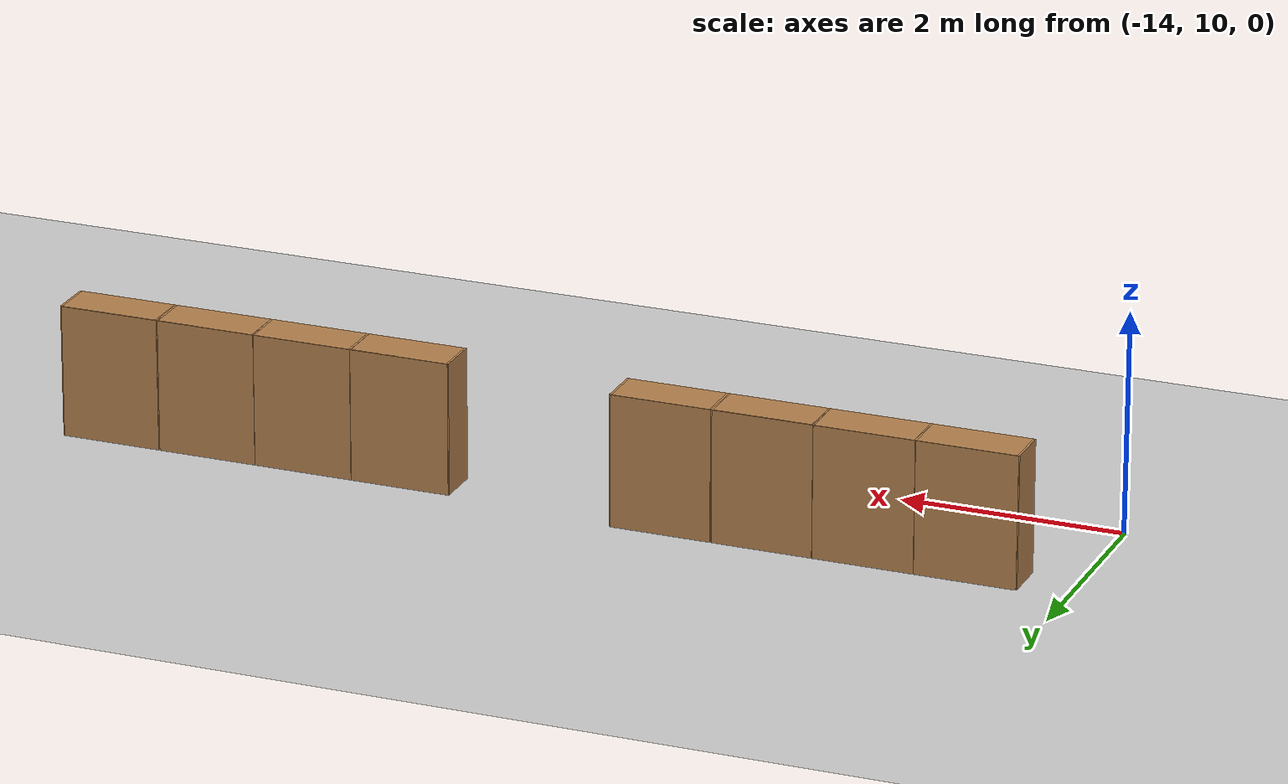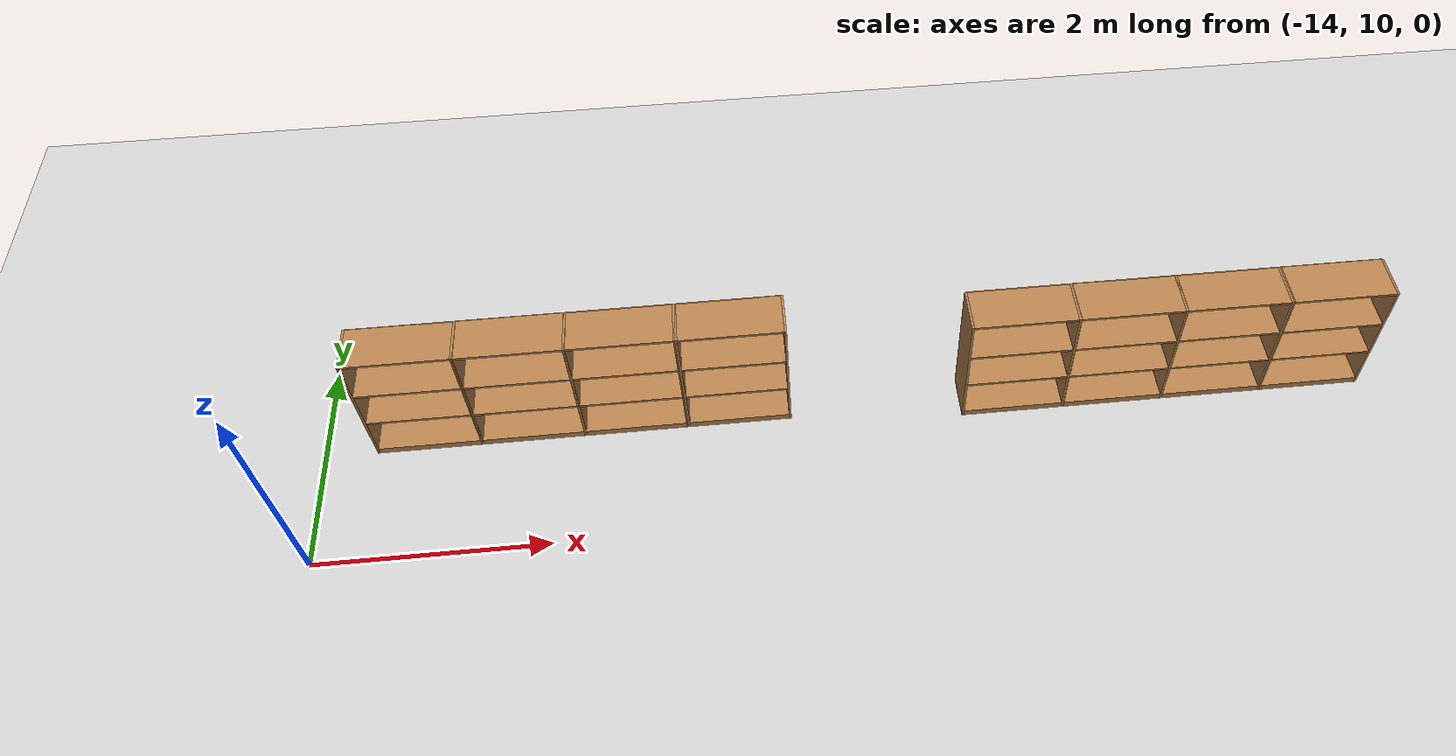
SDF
<sdf version="1.6">
 <world name="default">
  <model name="ground_plane">
   <static>1</static>
   <link name="link">
    <collision name="collision">
     <geometry><plane><normal>0 0 1</normal><size>100 100</size></plane></geometry>
     <surface><friction><ode><mu>100</mu><mu2>50</mu2></ode></friction></surface>
    </collision>
    <visual name="visual">
     <cast_shadows>0</cast_shadows>
     <geometry><plane><normal>0 0 1</normal><size>100 100</size></plane></geometry>
     <material>
      <script><uri>file://media/materials/scripts/gazebo.material</uri><name>Gazebo/Grey</name></script>
     </material>
    </visual>
   </link>
  </model>
  <model name="Bookself-4_clone_3">
   <model name="Bookself-3">
    <model name="bookshelf_0">
     <static>1</static>
     <link name="link">
      <inertial><mass>1</mass></inertial>
      <collision name="back">
       <pose>0 0.005 0.6 0 -0 0</pose>
       <geometry><box><size>0.9 0.01 1.2</size></box></geometry>
      </collision>
      <visual name="visual1">
       <pose>0 0.005 0.6 0 -0 0</pose>
       <geometry><box><size>0.9 0.01 1.2</size></box></geometry>
       <material>
        <script><uri>file://media/materials/scripts/gazebo.material</uri><name>Gazebo/Wood</name></script>
       </material>
      </visual>
      <collision name="left_side">
       <pose>0.45 -0.195 0.6 0 -0 0</pose>
       <geometry><box><size>0.02 0.4 1.2</size></box></geometry>
      </collision>
      <visual name="visual2">
       <pose>0.45 -0.195 0.6 0 -0 0</pose>
       <geometry><box><size>0.02 0.4 1.2</size></box></geometry>
       <material>
        <script><uri>file://media/materials/scripts/gazebo.material</uri><name>Gazebo/Wood</name></script>
       </material>
      </visual>
      <collision name="right_side">
       <pose>-0.45 -0.195 0.6 0 -0 0</pose>
       <geometry><box><size>0.02 0.4 1.2</size></box></geometry>
      </collision>
      <visual name="visual3">
       <pose>-0.45 -0.195 0.6 0 -0 0</pose>
       <geometry><box><size>0.02 0.4 1.2</size></box></geometry>
       <material>
        <script><uri>file://media/materials/scripts/gazebo.material</uri><name>Gazebo/Wood</name></script>
       </material>
      </visual>
      <collision name="bottom">
       <pose>0 -0.195 0.03 0 -0 0</pose>
       <geometry><box><size>0.88 0.4 0.06</size></box></geometry>
      </collision>
      <visual name="visual4">
       <pose>0 -0.195 0.03 0 -0 0</pose>
       <geometry><box><size>0.88 0.4 0.06</size></box></geometry>
       <material>
        <script><uri>file://media/materials/scripts/gazebo.material</uri><name>Gazebo/Wood</name></script>
       </material>
      </visual>
      <collision name="top">
       <pose>0 -0.195 1.19 0 -0 0</pose>
       <geometry><box><size>0.88 0.4 0.02</size></box></geometry>
      </collision>
      <visual name="visual5">
       <pose>0 -0.195 1.19 0 -0 0</pose>
       <geometry><box><size>0.88 0.4 0.02</size></box></geometry>
       <material>
        <script><uri>file://media/materials/scripts/gazebo.material</uri><name>Gazebo/Wood</name></script>
       </material>
      </visual>
      <collision name="low_shelf">
       <pose>0 -0.195 0.43 0 -0 0</pose>
       <geometry><box><size>0.88 0.4 0.02</size></box></geometry>
      </collision>
      <visual name="visual6">
       <pose>0 -0.195 0.43 0 -0 0</pose>
       <geometry><box><size>0.88 0.4 0.02</size></box></geometry>
       <material>
        <script><uri>file://media/materials/scripts/gazebo.material</uri><name>Gazebo/Wood</name></script>
       </material>
      </visual>
      <collision name="high_shelf">
       <pose>0 -0.195 0.8 0 -0 0</pose>
       <geometry><box><size>0.88 0.4 0.02</size></box></geometry>
      </collision>
      <visual name="visual7">
       <pose>0 -0.195 0.8 0 -0 0</pose>
       <geometry><box><size>0.88 0.4 0.02</size></box></geometry>
       <material>
        <script><uri>file://media/materials/scripts/gazebo.material</uri><name>Gazebo/Wood</name></script>
       </material>
      </visual>
     </link>
     <pose>-0.903039 0 0 0 -0 0</pose>
    </model>
    <model name="bookshelf_1">
     <static>1</static>
     <link name="link">
      <inertial><mass>1</mass></inertial>
      <collision name="back">
       <pose>0 0.005 0.6 0 -0 0</pose>
       <geometry><box><size>0.9 0.01 1.2</size></box></geometry>
      </collision>
      <visual name="visual1">
       <pose>0 0.005 0.6 0 -0 0</pose>
       <geometry><box><size>0.9 0.01 1.2</size></box></geometry>
       <material>
        <script><uri>file://media/materials/scripts/gazebo.material</uri><name>Gazebo/Wood</name></script>
       </material>
      </visual>
      <collision name="left_side">
       <pose>0.45 -0.195 0.6 0 -0 0</pose>
       <geometry><box><size>0.02 0.4 1.2</size></box></geometry>
      </collision>
      <visual name="visual2">
       <pose>0.45 -0.195 0.6 0 -0 0</pose>
       <geometry><box><size>0.02 0.4 1.2</size></box></geometry>
       <material>
        <script><uri>file://media/materials/scripts/gazebo.material</uri><name>Gazebo/Wood</name></script>
       </material>
      </visual>
      <collision name="right_side">
       <pose>-0.45 -0.195 0.6 0 -0 0</pose>
       <geometry><box><size>0.02 0.4 1.2</size></box></geometry>
      </collision>
      <visual name="visual3">
       <pose>-0.45 -0.195 0.6 0 -0 0</pose>
       <geometry><box><size>0.02 0.4 1.2</size></box></geometry>
       <material>
        <script><uri>file://media/materials/scripts/gazebo.material</uri><name>Gazebo/Wood</name></script>
       </material>
      </visual>
      <collision name="bottom">
       <pose>0 -0.195 0.03 0 -0 0</pose>
       <geometry><box><size>0.88 0.4 0.06</size></box></geometry>
      </collision>
      <visual name="visual4">
       <pose>0 -0.195 0.03 0 -0 0</pose>
       <geometry><box><size>0.88 0.4 0.06</size></box></geometry>
       <material>
        <script><uri>file://media/materials/scripts/gazebo.material</uri><name>Gazebo/Wood</name></script>
       </material>
      </visual>
      <collision name="top">
       <pose>0 -0.195 1.19 0 -0 0</pose>
       <geometry><box><size>0.88 0.4 0.02</size></box></geometry>
      </collision>
      <visual name="visual5">
       <pose>0 -0.195 1.19 0 -0 0</pose>
       <geometry><box><size>0.88 0.4 0.02</size></box></geometry>
       <material>
        <script><uri>file://media/materials/scripts/gazebo.material</uri><name>Gazebo/Wood</name></script>
       </material>
      </visual>
      <collision name="low_shelf">
       <pose>0 -0.195 0.43 0 -0 0</pose>
       <geometry><box><size>0.88 0.4 0.02</size></box></geometry>
      </collision>
      <visual name="visual6">
       <pose>0 -0.195 0.43 0 -0 0</pose>
       <geometry><box><size>0.88 0.4 0.02</size></box></geometry>
       <material>
        <script><uri>file://media/materials/scripts/gazebo.material</uri><name>Gazebo/Wood</name></script>
       </material>
      </visual>
      <collision name="high_shelf">
       <pose>0 -0.195 0.8 0 -0 0</pose>
       <geometry><box><size>0.88 0.4 0.02</size></box></geometry>
      </collision>
      <visual name="visual7">
       <pose>0 -0.195 0.8 0 -0 0</pose>
       <geometry><box><size>0.88 0.4 0.02</size></box></geometry>
       <material>
        <script><uri>file://media/materials/scripts/gazebo.material</uri><name>Gazebo/Wood</name></script>
       </material>
      </visual>
     </link>
     <pose>0.000535 0 0 0 -0 0</pose>
    </model>
    <model name="bookshelf_1_clone">
     <static>1</static>
     <link name="link">
      <inertial><mass>1</mass></inertial>
      <collision name="back">
       <pose>0 0.005 0.6 0 -0 0</pose>
       <geometry><box><size>0.9 0.01 1.2</size></box></geometry>
      </collision>
      <visual name="visual1">
       <pose>0 0.005 0.6 0 -0 0</pose>
       <geometry><box><size>0.9 0.01 1.2</size></box></geometry>
       <material>
        <script><uri>file://media/materials/scripts/gazebo.material</uri><name>Gazebo/Wood</name></script>
       </material>
      </visual>
      <collision name="left_side">
       <pose>0.45 -0.195 0.6 0 -0 0</pose>
       <geometry><box><size>0.02 0.4 1.2</size></box></geometry>
      </collision>
      <visual name="visual2">
       <pose>0.45 -0.195 0.6 0 -0 0</pose>
       <geometry><box><size>0.02 0.4 1.2</size></box></geometry>
       <material>
        <script><uri>file://media/materials/scripts/gazebo.material</uri><name>Gazebo/Wood</name></script>
       </material>
      </visual>
      <collision name="right_side">
       <pose>-0.45 -0.195 0.6 0 -0 0</pose>
       <geometry><box><size>0.02 0.4 1.2</size></box></geometry>
      </collision>
      <visual name="visual3">
       <pose>-0.45 -0.195 0.6 0 -0 0</pose>
       <geometry><box><size>0.02 0.4 1.2</size></box></geometry>
       <material>
        <script><uri>file://media/materials/scripts/gazebo.material</uri><name>Gazebo/Wood</name></script>
       </material>
      </visual>
      <collision name="bottom">
       <pose>0 -0.195 0.03 0 -0 0</pose>
       <geometry><box><size>0.88 0.4 0.06</size></box></geometry>
      </collision>
      <visual name="visual4">
       <pose>0 -0.195 0.03 0 -0 0</pose>
       <geometry><box><size>0.88 0.4 0.06</size></box></geometry>
       <material>
        <script><uri>file://media/materials/scripts/gazebo.material</uri><name>Gazebo/Wood</name></script>
       </material>
      </visual>
      <collision name="top">
       <pose>0 -0.195 1.19 0 -0 0</pose>
       <geometry><box><size>0.88 0.4 0.02</size></box></geometry>
      </collision>
      <visual name="visual5">
       <pose>0 -0.195 1.19 0 -0 0</pose>
       <geometry><box><size>0.88 0.4 0.02</size></box></geometry>
       <material>
        <script><uri>file://media/materials/scripts/gazebo.material</uri><name>Gazebo/Wood</name></script>
       </material>
      </visual>
      <collision name="low_shelf">
       <pose>0 -0.195 0.43 0 -0 0</pose>
       <geometry><box><size>0.88 0.4 0.02</size></box></geometry>
      </collision>
      <visual name="visual6">
       <pose>0 -0.195 0.43 0 -0 0</pose>
       <geometry><box><size>0.88 0.4 0.02</size></box></geometry>
       <material>
        <script><uri>file://media/materials/scripts/gazebo.material</uri><name>Gazebo/Wood</name></script>
       </material>
      </visual>
      <collision name="high_shelf">
       <pose>0 -0.195 0.8 0 -0 0</pose>
       <geometry><box><size>0.88 0.4 0.02</size></box></geometry>
      </collision>
      <visual name="visual7">
       <pose>0 -0.195 0.8 0 -0 0</pose>
       <geometry><box><size>0.88 0.4 0.02</size></box></geometry>
       <material>
        <script><uri>file://media/materials/scripts/gazebo.material</uri><name>Gazebo/Wood</name></script>
       </material>
      </visual>
     </link>
     <pose>0.902502 0 0 0 -0 0</pose>
    </model>
    <static>1</static>
    <pose>-0.906894 3e-05 0 0 -0 0</pose>
   </model>
   <model name="bookshelf">
    <static>1</static>
    <link name="link">
     <inertial><mass>1</mass></inertial>
     <collision name="back">
      <pose>0 0.005 0.6 0 -0 0</pose>
      <geometry><box><size>0.9 0.01 1.2</size></box></geometry>
     </collision>
     <visual name="visual1">
      <pose>0 0.005 0.6 0 -0 0</pose>
      <geometry><box><size>0.9 0.01 1.2</size></box></geometry>
      <material>
       <script><uri>file://media/materials/scripts/gazebo.material</uri><name>Gazebo/Wood</name></script>
      </material>
     </visual>
     <collision name="left_side">
      <pose>0.45 -0.195 0.6 0 -0 0</pose>
      <geometry><box><size>0.02 0.4 1.2</size></box></geometry>
     </collision>
     <visual name="visual2">
      <pose>0.45 -0.195 0.6 0 -0 0</pose>
      <geometry><box><size>0.02 0.4 1.2</size></box></geometry>
      <material>
       <script><uri>file://media/materials/scripts/gazebo.material</uri><name>Gazebo/Wood</name></script>
      </material>
     </visual>
     <collision name="right_side">
      <pose>-0.45 -0.195 0.6 0 -0 0</pose>
      <geometry><box><size>0.02 0.4 1.2</size></box></geometry>
     </collision>
     <visual name="visual3">
      <pose>-0.45 -0.195 0.6 0 -0 0</pose>
      <geometry><box><size>0.02 0.4 1.2</size></box></geometry>
      <material>
       <script><uri>file://media/materials/scripts/gazebo.material</uri><name>Gazebo/Wood</name></script>
      </material>
     </visual>
     <collision name="bottom">
      <pose>0 -0.195 0.03 0 -0 0</pose>
      <geometry><box><size>0.88 0.4 0.06</size></box></geometry>
     </collision>
     <visual name="visual4">
      <pose>0 -0.195 0.03 0 -0 0</pose>
      <geometry><box><size>0.88 0.4 0.06</size></box></geometry>
      <material>
       <script><uri>file://media/materials/scripts/gazebo.material</uri><name>Gazebo/Wood</name></script>
      </material>
     </visual>
     <collision name="top">
      <pose>0 -0.195 1.19 0 -0 0</pose>
      <geometry><box><size>0.88 0.4 0.02</size></box></geometry>
     </collision>
     <visual name="visual5">
      <pose>0 -0.195 1.19 0 -0 0</pose>
      <geometry><box><size>0.88 0.4 0.02</size></box></geometry>
      <material>
       <script><uri>file://media/materials/scripts/gazebo.material</uri><name>Gazebo/Wood</name></script>
      </material>
     </visual>
     <collision name="low_shelf">
      <pose>0 -0.195 0.43 0 -0 0</pose>
      <geometry><box><size>0.88 0.4 0.02</size></box></geometry>
     </collision>
     <visual name="visual6">
      <pose>0 -0.195 0.43 0 -0 0</pose>
      <geometry><box><size>0.88 0.4 0.02</size></box></geometry>
      <material>
       <script><uri>file://media/materials/scripts/gazebo.material</uri><name>Gazebo/Wood</name></script>
      </material>
     </visual>
     <collision name="high_shelf">
      <pose>0 -0.195 0.8 0 -0 0</pose>
      <geometry><box><size>0.88 0.4 0.02</size></box></geometry>
     </collision>
     <visual name="visual7">
      <pose>0 -0.195 0.8 0 -0 0</pose>
      <geometry><box><size>0.88 0.4 0.02</size></box></geometry>
      <material>
       <script><uri>file://media/materials/scripts/gazebo.material</uri><name>Gazebo/Wood</name></script>
      </material>
     </visual>
    </link>
    <pose>0.906808 3e-05 0 0 -0 0</pose>
   </model>
   <static>0</static>
   <pose>-6.1324 11.3528 0 0 -0 0</pose>
  </model>
  <model name="Bookself-4_clone_6">
   <model name="Bookself-3">
    <model name="bookshelf_0">
     <static>1</static>
     <link name="link">
      <inertial><mass>1</mass></inertial>
      <collision name="back">
       <pose>0 0.005 0.6 0 -0 0</pose>
       <geometry><box><size>0.9 0.01 1.2</size></box></geometry>
      </collision>
      <visual name="visual1">
       <pose>0 0.005 0.6 0 -0 0</pose>
       <geometry><box><size>0.9 0.01 1.2</size></box></geometry>
       <material>
        <script><uri>file://media/materials/scripts/gazebo.material</uri><name>Gazebo/Wood</name></script>
       </material>
      </visual>
      <collision name="left_side">
       <pose>0.45 -0.195 0.6 0 -0 0</pose>
       <geometry><box><size>0.02 0.4 1.2</size></box></geometry>
      </collision>
      <visual name="visual2">
       <pose>0.45 -0.195 0.6 0 -0 0</pose>
       <geometry><box><size>0.02 0.4 1.2</size></box></geometry>
       <material>
        <script><uri>file://media/materials/scripts/gazebo.material</uri><name>Gazebo/Wood</name></script>
       </material>
      </visual>
      <collision name="right_side">
       <pose>-0.45 -0.195 0.6 0 -0 0</pose>
       <geometry><box><size>0.02 0.4 1.2</size></box></geometry>
      </collision>
      <visual name="visual3">
       <pose>-0.45 -0.195 0.6 0 -0 0</pose>
       <geometry><box><size>0.02 0.4 1.2</size></box></geometry>
       <material>
        <script><uri>file://media/materials/scripts/gazebo.material</uri><name>Gazebo/Wood</name></script>
       </material>
      </visual>
      <collision name="bottom">
       <pose>0 -0.195 0.03 0 -0 0</pose>
       <geometry><box><size>0.88 0.4 0.06</size></box></geometry>
      </collision>
      <visual name="visual4">
       <pose>0 -0.195 0.03 0 -0 0</pose>
       <geometry><box><size>0.88 0.4 0.06</size></box></geometry>
       <material>
        <script><uri>file://media/materials/scripts/gazebo.material</uri><name>Gazebo/Wood</name></script>
       </material>
      </visual>
      <collision name="top">
       <pose>0 -0.195 1.19 0 -0 0</pose>
       <geometry><box><size>0.88 0.4 0.02</size></box></geometry>
      </collision>
      <visual name="visual5">
       <pose>0 -0.195 1.19 0 -0 0</pose>
       <geometry><box><size>0.88 0.4 0.02</size></box></geometry>
       <material>
        <script><uri>file://media/materials/scripts/gazebo.material</uri><name>Gazebo/Wood</name></script>
       </material>
      </visual>
      <collision name="low_shelf">
       <pose>0 -0.195 0.43 0 -0 0</pose>
       <geometry><box><size>0.88 0.4 0.02</size></box></geometry>
      </collision>
      <visual name="visual6">
       <pose>0 -0.195 0.43 0 -0 0</pose>
       <geometry><box><size>0.88 0.4 0.02</size></box></geometry>
       <material>
        <script><uri>file://media/materials/scripts/gazebo.material</uri><name>Gazebo/Wood</name></script>
       </material>
      </visual>
      <collision name="high_shelf">
       <pose>0 -0.195 0.8 0 -0 0</pose>
       <geometry><box><size>0.88 0.4 0.02</size></box></geometry>
      </collision>
      <visual name="visual7">
       <pose>0 -0.195 0.8 0 -0 0</pose>
       <geometry><box><size>0.88 0.4 0.02</size></box></geometry>
       <material>
        <script><uri>file://media/materials/scripts/gazebo.material</uri><name>Gazebo/Wood</name></script>
       </material>
      </visual>
     </link>
     <pose>-0.903039 0 0 0 -0 0</pose>
    </model>
    <model name="bookshelf_1">
     <static>1</static>
     <link name="link">
      <inertial><mass>1</mass></inertial>
      <collision name="back">
       <pose>0 0.005 0.6 0 -0 0</pose>
       <geometry><box><size>0.9 0.01 1.2</size></box></geometry>
      </collision>
      <visual name="visual1">
       <pose>0 0.005 0.6 0 -0 0</pose>
       <geometry><box><size>0.9 0.01 1.2</size></box></geometry>
       <material>
        <script><uri>file://media/materials/scripts/gazebo.material</uri><name>Gazebo/Wood</name></script>
       </material>
      </visual>
      <collision name="left_side">
       <pose>0.45 -0.195 0.6 0 -0 0</pose>
       <geometry><box><size>0.02 0.4 1.2</size></box></geometry>
      </collision>
      <visual name="visual2">
       <pose>0.45 -0.195 0.6 0 -0 0</pose>
       <geometry><box><size>0.02 0.4 1.2</size></box></geometry>
       <material>
        <script><uri>file://media/materials/scripts/gazebo.material</uri><name>Gazebo/Wood</name></script>
       </material>
      </visual>
      <collision name="right_side">
       <pose>-0.45 -0.195 0.6 0 -0 0</pose>
       <geometry><box><size>0.02 0.4 1.2</size></box></geometry>
      </collision>
      <visual name="visual3">
       <pose>-0.45 -0.195 0.6 0 -0 0</pose>
       <geometry><box><size>0.02 0.4 1.2</size></box></geometry>
       <material>
        <script><uri>file://media/materials/scripts/gazebo.material</uri><name>Gazebo/Wood</name></script>
       </material>
      </visual>
      <collision name="bottom">
       <pose>0 -0.195 0.03 0 -0 0</pose>
       <geometry><box><size>0.88 0.4 0.06</size></box></geometry>
      </collision>
      <visual name="visual4">
       <pose>0 -0.195 0.03 0 -0 0</pose>
       <geometry><box><size>0.88 0.4 0.06</size></box></geometry>
       <material>
        <script><uri>file://media/materials/scripts/gazebo.material</uri><name>Gazebo/Wood</name></script>
       </material>
      </visual>
      <collision name="top">
       <pose>0 -0.195 1.19 0 -0 0</pose>
       <geometry><box><size>0.88 0.4 0.02</size></box></geometry>
      </collision>
      <visual name="visual5">
       <pose>0 -0.195 1.19 0 -0 0</pose>
       <geometry><box><size>0.88 0.4 0.02</size></box></geometry>
       <material>
        <script><uri>file://media/materials/scripts/gazebo.material</uri><name>Gazebo/Wood</name></script>
       </material>
      </visual>
      <collision name="low_shelf">
       <pose>0 -0.195 0.43 0 -0 0</pose>
       <geometry><box><size>0.88 0.4 0.02</size></box></geometry>
      </collision>
      <visual name="visual6">
       <pose>0 -0.195 0.43 0 -0 0</pose>
       <geometry><box><size>0.88 0.4 0.02</size></box></geometry>
       <material>
        <script><uri>file://media/materials/scripts/gazebo.material</uri><name>Gazebo/Wood</name></script>
       </material>
      </visual>
      <collision name="high_shelf">
       <pose>0 -0.195 0.8 0 -0 0</pose>
       <geometry><box><size>0.88 0.4 0.02</size></box></geometry>
      </collision>
      <visual name="visual7">
       <pose>0 -0.195 0.8 0 -0 0</pose>
       <geometry><box><size>0.88 0.4 0.02</size></box></geometry>
       <material>
        <script><uri>file://media/materials/scripts/gazebo.material</uri><name>Gazebo/Wood</name></script>
       </material>
      </visual>
     </link>
     <pose>0.000535 0 0 0 -0 0</pose>
    </model>
    <model name="bookshelf_1_clone">
     <static>1</static>
     <link name="link">
      <inertial><mass>1</mass></inertial>
      <collision name="back">
       <pose>0 0.005 0.6 0 -0 0</pose>
       <geometry><box><size>0.9 0.01 1.2</size></box></geometry>
      </collision>
      <visual name="visual1">
       <pose>0 0.005 0.6 0 -0 0</pose>
       <geometry><box><size>0.9 0.01 1.2</size></box></geometry>
       <material>
        <script><uri>file://media/materials/scripts/gazebo.material</uri><name>Gazebo/Wood</name></script>
       </material>
      </visual>
      <collision name="left_side">
       <pose>0.45 -0.195 0.6 0 -0 0</pose>
       <geometry><box><size>0.02 0.4 1.2</size></box></geometry>
      </collision>
      <visual name="visual2">
       <pose>0.45 -0.195 0.6 0 -0 0</pose>
       <geometry><box><size>0.02 0.4 1.2</size></box></geometry>
       <material>
        <script><uri>file://media/materials/scripts/gazebo.material</uri><name>Gazebo/Wood</name></script>
       </material>
      </visual>
      <collision name="right_side">
       <pose>-0.45 -0.195 0.6 0 -0 0</pose>
       <geometry><box><size>0.02 0.4 1.2</size></box></geometry>
      </collision>
      <visual name="visual3">
       <pose>-0.45 -0.195 0.6 0 -0 0</pose>
       <geometry><box><size>0.02 0.4 1.2</size></box></geometry>
       <material>
        <script><uri>file://media/materials/scripts/gazebo.material</uri><name>Gazebo/Wood</name></script>
       </material>
      </visual>
      <collision name="bottom">
       <pose>0 -0.195 0.03 0 -0 0</pose>
       <geometry><box><size>0.88 0.4 0.06</size></box></geometry>
      </collision>
      <visual name="visual4">
       <pose>0 -0.195 0.03 0 -0 0</pose>
       <geometry><box><size>0.88 0.4 0.06</size></box></geometry>
       <material>
        <script><uri>file://media/materials/scripts/gazebo.material</uri><name>Gazebo/Wood</name></script>
       </material>
      </visual>
      <collision name="top">
       <pose>0 -0.195 1.19 0 -0 0</pose>
       <geometry><box><size>0.88 0.4 0.02</size></box></geometry>
      </collision>
      <visual name="visual5">
       <pose>0 -0.195 1.19 0 -0 0</pose>
       <geometry><box><size>0.88 0.4 0.02</size></box></geometry>
       <material>
        <script><uri>file://media/materials/scripts/gazebo.material</uri><name>Gazebo/Wood</name></script>
       </material>
      </visual>
      <collision name="low_shelf">
       <pose>0 -0.195 0.43 0 -0 0</pose>
       <geometry><box><size>0.88 0.4 0.02</size></box></geometry>
      </collision>
      <visual name="visual6">
       <pose>0 -0.195 0.43 0 -0 0</pose>
       <geometry><box><size>0.88 0.4 0.02</size></box></geometry>
       <material>
        <script><uri>file://media/materials/scripts/gazebo.material</uri><name>Gazebo/Wood</name></script>
       </material>
      </visual>
      <collision name="high_shelf">
       <pose>0 -0.195 0.8 0 -0 0</pose>
       <geometry><box><size>0.88 0.4 0.02</size></box></geometry>
      </collision>
      <visual name="visual7">
       <pose>0 -0.195 0.8 0 -0 0</pose>
       <geometry><box><size>0.88 0.4 0.02</size></box></geometry>
       <material>
        <script><uri>file://media/materials/scripts/gazebo.material</uri><name>Gazebo/Wood</name></script>
       </material>
      </visual>
     </link>
     <pose>0.902502 0 0 0 -0 0</pose>
    </model>
    <static>1</static>
    <pose>-0.906894 3e-05 0 0 -0 0</pose>
   </model>
   <model name="bookshelf">
    <static>1</static>
    <link name="link">
     <inertial><mass>1</mass></inertial>
     <collision name="back">
      <pose>0 0.005 0.6 0 -0 0</pose>
      <geometry><box><size>0.9 0.01 1.2</size></box></geometry>
     </collision>
     <visual name="visual1">
      <pose>0 0.005 0.6 0 -0 0</pose>
      <geometry><box><size>0.9 0.01 1.2</size></box></geometry>
      <material>
       <script><uri>file://media/materials/scripts/gazebo.material</uri><name>Gazebo/Wood</name></script>
      </material>
     </visual>
     <collision name="left_side">
      <pose>0.45 -0.195 0.6 0 -0 0</pose>
      <geometry><box><size>0.02 0.4 1.2</size></box></geometry>
     </collision>
     <visual name="visual2">
      <pose>0.45 -0.195 0.6 0 -0 0</pose>
      <geometry><box><size>0.02 0.4 1.2</size></box></geometry>
      <material>
       <script><uri>file://media/materials/scripts/gazebo.material</uri><name>Gazebo/Wood</name></script>
      </material>
     </visual>
     <collision name="right_side">
      <pose>-0.45 -0.195 0.6 0 -0 0</pose>
      <geometry><box><size>0.02 0.4 1.2</size></box></geometry>
     </collision>
     <visual name="visual3">
      <pose>-0.45 -0.195 0.6 0 -0 0</pose>
      <geometry><box><size>0.02 0.4 1.2</size></box></geometry>
      <material>
       <script><uri>file://media/materials/scripts/gazebo.material</uri><name>Gazebo/Wood</name></script>
      </material>
     </visual>
     <collision name="bottom">
      <pose>0 -0.195 0.03 0 -0 0</pose>
      <geometry><box><size>0.88 0.4 0.06</size></box></geometry>
     </collision>
     <visual name="visual4">
      <pose>0 -0.195 0.03 0 -0 0</pose>
      <geometry><box><size>0.88 0.4 0.06</size></box></geometry>
      <material>
       <script><uri>file://media/materials/scripts/gazebo.material</uri><name>Gazebo/Wood</name></script>
      </material>
     </visual>
     <collision name="top">
      <pose>0 -0.195 1.19 0 -0 0</pose>
      <geometry><box><size>0.88 0.4 0.02</size></box></geometry>
     </collision>
     <visual name="visual5">
      <pose>0 -0.195 1.19 0 -0 0</pose>
      <geometry><box><size>0.88 0.4 0.02</size></box></geometry>
      <material>
       <script><uri>file://media/materials/scripts/gazebo.material</uri><name>Gazebo/Wood</name></script>
      </material>
     </visual>
     <collision name="low_shelf">
      <pose>0 -0.195 0.43 0 -0 0</pose>
      <geometry><box><size>0.88 0.4 0.02</size></box></geometry>
     </collision>
     <visual name="visual6">
      <pose>0 -0.195 0.43 0 -0 0</pose>
      <geometry><box><size>0.88 0.4 0.02</size></box></geometry>
      <material>
       <script><uri>file://media/materials/scripts/gazebo.material</uri><name>Gazebo/Wood</name></script>
      </material>
     </visual>
     <collision name="high_shelf">
      <pose>0 -0.195 0.8 0 -0 0</pose>
      <geometry><box><size>0.88 0.4 0.02</size></box></geometry>
     </collision>
     <visual name="visual7">
      <pose>0 -0.195 0.8 0 -0 0</pose>
      <geometry><box><size>0.88 0.4 0.02</size></box></geometry>
      <material>
       <script><uri>file://media/materials/scripts/gazebo.material</uri><name>Gazebo/Wood</name></script>
      </material>
     </visual>
    </link>
    <pose>0.906808 3e-05 0 0 -0 0</pose>
   </model>
   <static>0</static>
   <pose>-11.2899 11.4786 0 0 -0 0</pose>
  </model>
 </world>
</sdf>
